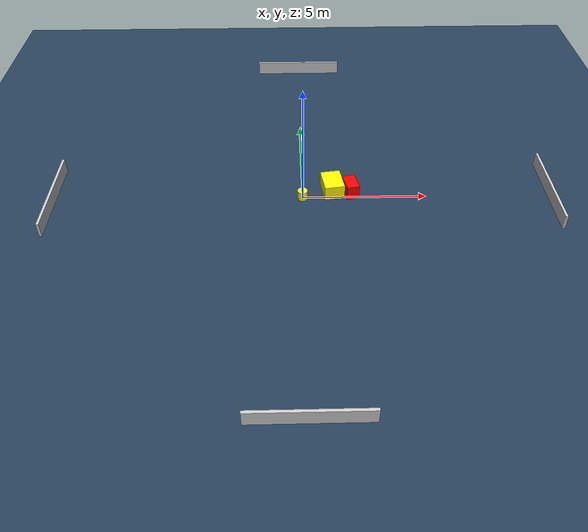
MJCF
<?xml version="1.0" ?>
<mujoco model="generated_environment">
  <option timestep="0.01" integrator="RK4" cone="elliptic"/>
  <default>
    <geom density="1"/>
  </default>
  <asset>
    <texture builtin="gradient" height="3072" name="skybox" rgb1="0.3 0.5 0.7" rgb2="0 0 0" type="skybox" width="512"/>
    <texture builtin="checker" height="300" name="groundplane" rgb1="0.2 0.3 0.4" rgb2="0.1 0.2 0.3" type="2d" width="300"/>
    <material name="groundplane" reflectance="0.2" texrepeat="5 5" texture="groundplane"/>
  </asset>
  <worldbody>
    <light dir="0 0 -1" directional="true" pos="0 0 1.5"/>
    <geom condim="3" friction="0.5 0.005 0.001" material="groundplane" name="floor" pos="0 0 0" size="0 0 0.05" type="plane"/>
    <body name="walls">
      <geom name="wall_1" condim="4" pos="-10.0 0.0 0.3" rgba="0.800000011920929 0.800000011920929 0.800000011920929 1.0" size="0.05 2.0 0.3" type="box"/>
      <geom name="wall_2" condim="4" pos="10.0 0.0 0.3" rgba="0.800000011920929 0.800000011920929 0.800000011920929 1.0" size="0.05 2.0 0.3" type="box"/>
      <geom name="wall_3" condim="4" pos="0.0 -10.0 0.3" rgba="0.800000011920929 0.800000011920929 0.800000011920929 1.0" size="2.0 0.05 0.3" type="box"/>
      <geom name="wall_4" condim="4" pos="0.0 10.0 0.3" rgba="0.800000011920929 0.800000011920929 0.800000011920929 1.0" size="2.0 0.05 0.3" type="box"/>
    </body>
    <body name="robot">
      <joint name="joint_x" type="slide" pos="0 0 0" axis="1 0 0"/>
      <joint name="joint_y" type="slide" pos="0 0 0" axis="0 1 0"/>
      <geom name="robot" type="cylinder" pos="0.0 0.0 0.2" size="0.2 0.2 0.0" mass="5.0" friction="1.0 0.005 0.0001" condim="4" rgba="1.0 1.0 0.0 1.0"/>
    </body>
    <body name="obstacle_1_movable">
      <geom name="obstacle_1_movable" condim="4" pos="1.2200858037093345 0.4394511463497017 0.3" euler="0 0 278.7356636130776" friction="0.0 0.005 0.001" rgba="1.0 1.0 0.0 1.0" size="0.5252978892001007 0.4024269067698919 0.3" type="box" mass="0.1"/>
      <joint type="free"/>
    </body>
    <body name="obstacle_2_static">
      <geom name="obstacle_2_static" condim="4" pos="1.9544564509055005 0.29126146475578474 0.3" euler="0 0 102.91909951944675" friction="0.0 0.005 0.001" rgba="1.0 0.0 0.0 1.0" size="0.3864419725947653 0.253625099220815 0.3" type="box"/>
    </body>
  </worldbody>
  <actuator>
    <motor name="actuator_x" joint="joint_x" gear="1" ctrlrange="-1 1"/>
    <motor name="actuator_y" joint="joint_y" gear="1" ctrlrange="-1 1"/>
  </actuator>
</mujoco>
